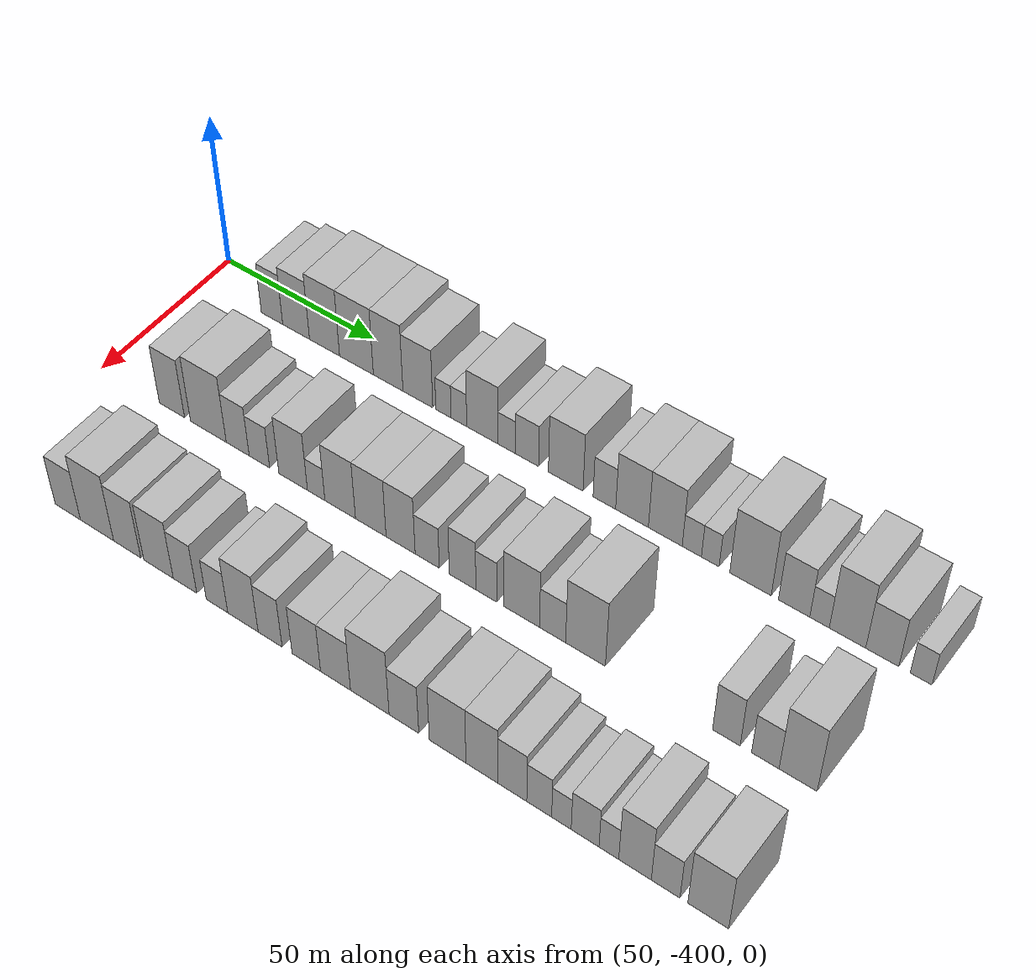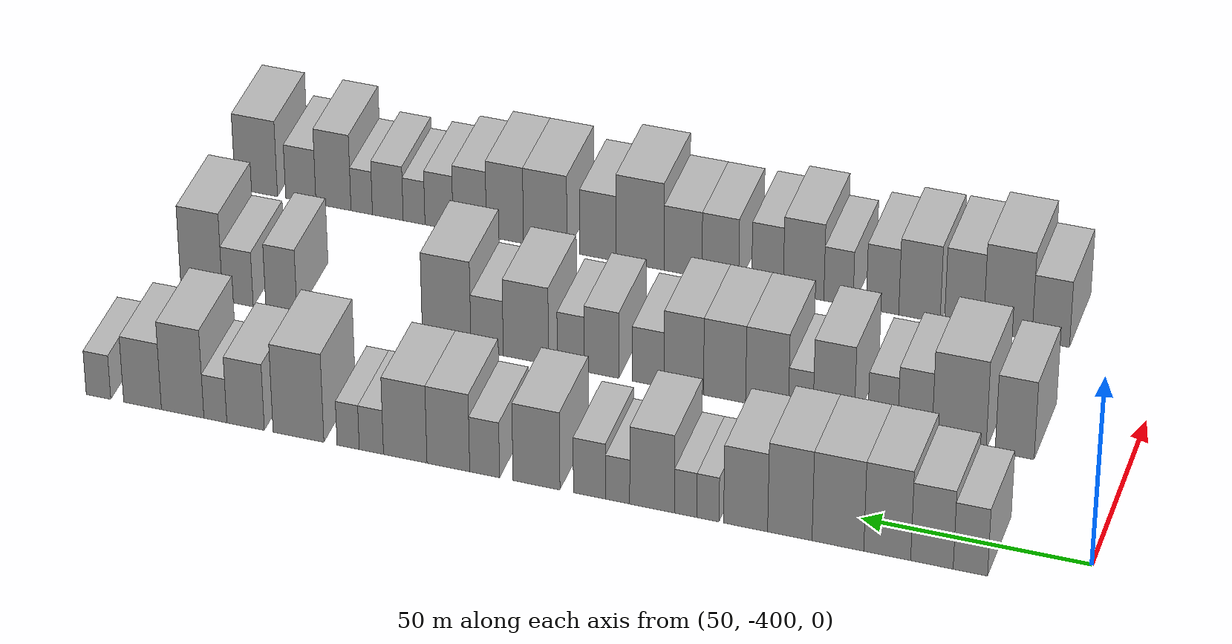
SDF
<sdf version="1.6">
 <world name="default">
  <model name="building_1">
   <static>1</static>
   <pose>50.0000 -376.3061 0 0.000000 0.000000 0.000000</pose>
   <link name="link">
    <pose>0 0 9.00 0 0 0</pose>
    <collision name="collision"><geometry><box><size>20.0000 7.3878 18.0000</size></box></geometry></collision>
    <visual name="visual">
     <cast_shadows>0</cast_shadows>
     <geometry><box><size>20.0000 7.3878 18.0000</size></box></geometry>
     <material>
      <script>
       <uri>model://HANNAS_wall/materials/scripts</uri>
       <uri>model://HANNAS_wall/materials/textures</uri>
       <name>vrc/HANNAS_wall</name>
      </script>
     </material>
    </visual>
   </link>
  </model>
  <model name="building_2">
   <static>1</static>
   <pose>50.0000 -368.0308 0 0.000000 0.000000 0.000000</pose>
   <link name="link">
    <pose>0 0 10.50 0 0 0</pose>
    <collision name="collision"><geometry><box><size>20.0000 9.1627 21.0000</size></box></geometry></collision>
    <visual name="visual">
     <cast_shadows>0</cast_shadows>
     <geometry><box><size>20.0000 9.1627 21.0000</size></box></geometry>
     <material>
      <script>
       <uri>model://HANNAS_wall/materials/scripts</uri>
       <uri>model://HANNAS_wall/materials/textures</uri>
       <name>vrc/HANNAS_wall</name>
      </script>
     </material>
    </visual>
   </link>
  </model>
  <model name="building_3">
   <static>1</static>
   <pose>50.0000 -358.3713 0 0.000000 0.000000 0.000000</pose>
   <link name="link">
    <pose>0 0 12.00 0 0 0</pose>
    <collision name="collision"><geometry><box><size>20.0000 10.1564 24.0000</size></box></geometry></collision>
    <visual name="visual">
     <cast_shadows>0</cast_shadows>
     <geometry><box><size>20.0000 10.1564 24.0000</size></box></geometry>
     <material>
      <script>
       <uri>model://HANNAS_wall/materials/scripts</uri>
       <uri>model://HANNAS_wall/materials/textures</uri>
       <name>vrc/HANNAS_wall</name>
      </script>
     </material>
    </visual>
   </link>
  </model>
  <model name="building_4">
   <static>1</static>
   <pose>50.0000 -347.6701 0 0.000000 0.000000 0.000000</pose>
   <link name="link">
    <pose>0 0 12.00 0 0 0</pose>
    <collision name="collision"><geometry><box><size>20.0000 11.2460 24.0000</size></box></geometry></collision>
    <visual name="visual">
     <cast_shadows>0</cast_shadows>
     <geometry><box><size>20.0000 11.2460 24.0000</size></box></geometry>
     <material>
      <script>
       <uri>model://HANNAS_wall/materials/scripts</uri>
       <uri>model://HANNAS_wall/materials/textures</uri>
       <name>vrc/HANNAS_wall</name>
      </script>
     </material>
    </visual>
   </link>
  </model>
  <model name="building_5">
   <static>1</static>
   <pose>50.0000 -337.1962 0 0.000000 0.000000 0.000000</pose>
   <link name="link">
    <pose>0 0 12.00 0 0 0</pose>
    <collision name="collision"><geometry><box><size>20.0000 9.7019 24.0000</size></box></geometry></collision>
    <visual name="visual">
     <cast_shadows>0</cast_shadows>
     <geometry><box><size>20.0000 9.7019 24.0000</size></box></geometry>
     <material>
      <script>
       <uri>model://HANNAS_wall/materials/scripts</uri>
       <uri>model://HANNAS_wall/materials/textures</uri>
       <name>vrc/HANNAS_wall</name>
      </script>
     </material>
    </visual>
   </link>
  </model>
  <model name="building_6">
   <static>1</static>
   <pose>50.0000 -327.5208 0 0.000000 0.000000 0.000000</pose>
   <link name="link">
    <pose>0 0 10.50 0 0 0</pose>
    <collision name="collision"><geometry><box><size>20.0000 9.6488 21.0000</size></box></geometry></collision>
    <visual name="visual">
     <cast_shadows>0</cast_shadows>
     <geometry><box><size>20.0000 9.6488 21.0000</size></box></geometry>
     <material>
      <script>
       <uri>model://HANNAS_wall/materials/scripts</uri>
       <uri>model://HANNAS_wall/materials/textures</uri>
       <name>vrc/HANNAS_wall</name>
      </script>
     </material>
    </visual>
   </link>
  </model>
  <model name="building_7">
   <static>1</static>
   <pose>50.0000 -319.2568 0 0.000000 0.000000 0.000000</pose>
   <link name="link">
    <pose>0 0 6.00 0 0 0</pose>
    <collision name="collision"><geometry><box><size>20.0000 4.8792 12.0000</size></box></geometry></collision>
    <visual name="visual">
     <cast_shadows>0</cast_shadows>
     <geometry><box><size>20.0000 4.8792 12.0000</size></box></geometry>
     <material>
      <script>
       <uri>model://HANNAS_wall/materials/scripts</uri>
       <uri>model://HANNAS_wall/materials/textures</uri>
       <name>vrc/HANNAS_wall</name>
      </script>
     </material>
    </visual>
   </link>
  </model>
  <model name="building_8">
   <static>1</static>
   <pose>50.0000 -314.3427 0 0.000000 0.000000 0.000000</pose>
   <link name="link">
    <pose>0 0 6.00 0 0 0</pose>
    <collision name="collision"><geometry><box><size>20.0000 4.9490 12.0000</size></box></geometry></collision>
    <visual name="visual">
     <cast_shadows>0</cast_shadows>
     <geometry><box><size>20.0000 4.9490 12.0000</size></box></geometry>
     <material>
      <script>
       <uri>model://HANNAS_wall/materials/scripts</uri>
       <uri>model://HANNAS_wall/materials/textures</uri>
       <name>vrc/HANNAS_wall</name>
      </script>
     </material>
    </visual>
   </link>
  </model>
  <model name="building_9">
   <static>1</static>
   <pose>50.0000 -306.9284 0 0.000000 0.000000 0.000000</pose>
   <link name="link">
    <pose>0 0 10.50 0 0 0</pose>
    <collision name="collision"><geometry><box><size>20.0000 9.8796 21.0000</size></box></geometry></collision>
    <visual name="visual">
     <cast_shadows>0</cast_shadows>
     <geometry><box><size>20.0000 9.8796 21.0000</size></box></geometry>
     <material>
      <script>
       <uri>model://HANNAS_wall/materials/scripts</uri>
       <uri>model://HANNAS_wall/materials/textures</uri>
       <name>vrc/HANNAS_wall</name>
      </script>
     </material>
    </visual>
   </link>
  </model>
  <model name="building_10">
   <static>1</static>
   <pose>50.0000 -299.2899 0 0.000000 0.000000 0.000000</pose>
   <link name="link">
    <pose>0 0 6.00 0 0 0</pose>
    <collision name="collision"><geometry><box><size>20.0000 5.3975 12.0000</size></box></geometry></collision>
    <visual name="visual">
     <cast_shadows>0</cast_shadows>
     <geometry><box><size>20.0000 5.3975 12.0000</size></box></geometry>
     <material>
      <script>
       <uri>model://HANNAS_wall/materials/scripts</uri>
       <uri>model://HANNAS_wall/materials/textures</uri>
       <name>vrc/HANNAS_wall</name>
      </script>
     </material>
    </visual>
   </link>
  </model>
  <model name="building_11">
   <static>1</static>
   <pose>50.0000 -293.0411 0 0.000000 0.000000 0.000000</pose>
   <link name="link">
    <pose>0 0 7.50 0 0 0</pose>
    <collision name="collision"><geometry><box><size>20.0000 7.1000 15.0000</size></box></geometry></collision>
    <visual name="visual">
     <cast_shadows>0</cast_shadows>
     <geometry><box><size>20.0000 7.1000 15.0000</size></box></geometry>
     <material>
      <script>
       <uri>model://HANNAS_wall/materials/scripts</uri>
       <uri>model://HANNAS_wall/materials/textures</uri>
       <name>vrc/HANNAS_wall</name>
      </script>
     </material>
    </visual>
   </link>
  </model>
  <model name="building_12">
   <static>1</static>
   <pose>50.0000 -281.2441 0 0.000000 0.000000 0.000000</pose>
   <link name="link">
    <pose>0 0 10.50 0 0 0</pose>
    <collision name="collision"><geometry><box><size>20.0000 10.4942 21.0000</size></box></geometry></collision>
    <visual name="visual">
     <cast_shadows>0</cast_shadows>
     <geometry><box><size>20.0000 10.4942 21.0000</size></box></geometry>
     <material>
      <script>
       <uri>model://HANNAS_wall/materials/scripts</uri>
       <uri>model://HANNAS_wall/materials/textures</uri>
       <name>vrc/HANNAS_wall</name>
      </script>
     </material>
    </visual>
   </link>
  </model>
  <model name="building_13">
   <static>1</static>
   <pose>50.0000 -269.6385 0 0.000000 0.000000 0.000000</pose>
   <link name="link">
    <pose>0 0 7.50 0 0 0</pose>
    <collision name="collision"><geometry><box><size>20.0000 6.7169 15.0000</size></box></geometry></collision>
    <visual name="visual">
     <cast_shadows>0</cast_shadows>
     <geometry><box><size>20.0000 6.7169 15.0000</size></box></geometry>
     <material>
      <script>
       <uri>model://HANNAS_wall/materials/scripts</uri>
       <uri>model://HANNAS_wall/materials/textures</uri>
       <name>vrc/HANNAS_wall</name>
      </script>
     </material>
    </visual>
   </link>
  </model>
  <model name="building_14">
   <static>1</static>
   <pose>50.0000 -261.4667 0 0.000000 0.000000 0.000000</pose>
   <link name="link">
    <pose>0 0 10.50 0 0 0</pose>
    <collision name="collision"><geometry><box><size>20.0000 9.6268 21.0000</size></box></geometry></collision>
    <visual name="visual">
     <cast_shadows>0</cast_shadows>
     <geometry><box><size>20.0000 9.6268 21.0000</size></box></geometry>
     <material>
      <script>
       <uri>model://HANNAS_wall/materials/scripts</uri>
       <uri>model://HANNAS_wall/materials/textures</uri>
       <name>vrc/HANNAS_wall</name>
      </script>
     </material>
    </visual>
   </link>
  </model>
  <model name="building_15">
   <static>1</static>
   <pose>50.0000 -251.7313 0 0.000000 0.000000 0.000000</pose>
   <link name="link">
    <pose>0 0 10.50 0 0 0</pose>
    <collision name="collision"><geometry><box><size>20.0000 9.8440 21.0000</size></box></geometry></collision>
    <visual name="visual">
     <cast_shadows>0</cast_shadows>
     <geometry><box><size>20.0000 9.8440 21.0000</size></box></geometry>
     <material>
      <script>
       <uri>model://HANNAS_wall/materials/scripts</uri>
       <uri>model://HANNAS_wall/materials/textures</uri>
       <name>vrc/HANNAS_wall</name>
      </script>
     </material>
    </visual>
   </link>
  </model>
  <model name="building_16">
   <static>1</static>
   <pose>50.0000 -244.0632 0 0.000000 0.000000 0.000000</pose>
   <link name="link">
    <pose>0 0 6.00 0 0 0</pose>
    <collision name="collision"><geometry><box><size>20.0000 5.4923 12.0000</size></box></geometry></collision>
    <visual name="visual">
     <cast_shadows>0</cast_shadows>
     <geometry><box><size>20.0000 5.4923 12.0000</size></box></geometry>
     <material>
      <script>
       <uri>model://HANNAS_wall/materials/scripts</uri>
       <uri>model://HANNAS_wall/materials/textures</uri>
       <name>vrc/HANNAS_wall</name>
      </script>
     </material>
    </visual>
   </link>
  </model>
  <model name="building_17">
   <static>1</static>
   <pose>50.0000 -238.7936 0 0.000000 0.000000 0.000000</pose>
   <link name="link">
    <pose>0 0 6.00 0 0 0</pose>
    <collision name="collision"><geometry><box><size>20.0000 5.0470 12.0000</size></box></geometry></collision>
    <visual name="visual">
     <cast_shadows>0</cast_shadows>
     <geometry><box><size>20.0000 5.0470 12.0000</size></box></geometry>
     <material>
      <script>
       <uri>model://HANNAS_wall/materials/scripts</uri>
       <uri>model://HANNAS_wall/materials/textures</uri>
       <name>vrc/HANNAS_wall</name>
      </script>
     </material>
    </visual>
   </link>
  </model>
  <model name="building_18">
   <static>1</static>
   <pose>50.0000 -227.4646 0 0.000000 0.000000 0.000000</pose>
   <link name="link">
    <pose>0 0 12.00 0 0 0</pose>
    <collision name="collision"><geometry><box><size>20.0000 11.6110 24.0000</size></box></geometry></collision>
    <visual name="visual">
     <cast_shadows>0</cast_shadows>
     <geometry><box><size>20.0000 11.6110 24.0000</size></box></geometry>
     <material>
      <script>
       <uri>model://HANNAS_wall/materials/scripts</uri>
       <uri>model://HANNAS_wall/materials/textures</uri>
       <name>vrc/HANNAS_wall</name>
      </script>
     </material>
    </visual>
   </link>
  </model>
  <model name="building_19">
   <static>1</static>
   <pose>50.0000 -215.3501 0 0.000000 0.000000 0.000000</pose>
   <link name="link">
    <pose>0 0 9.00 0 0 0</pose>
    <collision name="collision"><geometry><box><size>20.0000 8.6180 18.0000</size></box></geometry></collision>
    <visual name="visual">
     <cast_shadows>0</cast_shadows>
     <geometry><box><size>20.0000 8.6180 18.0000</size></box></geometry>
     <material>
      <script>
       <uri>model://HANNAS_wall/materials/scripts</uri>
       <uri>model://HANNAS_wall/materials/textures</uri>
       <name>vrc/HANNAS_wall</name>
      </script>
     </material>
    </visual>
   </link>
  </model>
  <model name="building_20">
   <static>1</static>
   <pose>50.0000 -208.3999 0 0.000000 0.000000 0.000000</pose>
   <link name="link">
    <pose>0 0 6.00 0 0 0</pose>
    <collision name="collision"><geometry><box><size>20.0000 5.2822 12.0000</size></box></geometry></collision>
    <visual name="visual">
     <cast_shadows>0</cast_shadows>
     <geometry><box><size>20.0000 5.2822 12.0000</size></box></geometry>
     <material>
      <script>
       <uri>model://HANNAS_wall/materials/scripts</uri>
       <uri>model://HANNAS_wall/materials/textures</uri>
       <name>vrc/HANNAS_wall</name>
      </script>
     </material>
    </visual>
   </link>
  </model>
  <model name="building_21">
   <static>1</static>
   <pose>50.0000 -200.8549 0 0.000000 0.000000 0.000000</pose>
   <link name="link">
    <pose>0 0 12.00 0 0 0</pose>
    <collision name="collision"><geometry><box><size>20.0000 9.8079 24.0000</size></box></geometry></collision>
    <visual name="visual">
     <cast_shadows>0</cast_shadows>
     <geometry><box><size>20.0000 9.8079 24.0000</size></box></geometry>
     <material>
      <script>
       <uri>model://HANNAS_wall/materials/scripts</uri>
       <uri>model://HANNAS_wall/materials/textures</uri>
       <name>vrc/HANNAS_wall</name>
      </script>
     </material>
    </visual>
   </link>
  </model>
  <model name="building_22">
   <static>1</static>
   <pose>50.0000 -191.5766 0 0.000000 0.000000 0.000000</pose>
   <link name="link">
    <pose>0 0 9.00 0 0 0</pose>
    <collision name="collision"><geometry><box><size>20.0000 8.7487 18.0000</size></box></geometry></collision>
    <visual name="visual">
     <cast_shadows>0</cast_shadows>
     <geometry><box><size>20.0000 8.7487 18.0000</size></box></geometry>
     <material>
      <script>
       <uri>model://HANNAS_wall/materials/scripts</uri>
       <uri>model://HANNAS_wall/materials/textures</uri>
       <name>vrc/HANNAS_wall</name>
      </script>
     </material>
    </visual>
   </link>
  </model>
  <model name="building_23">
   <static>1</static>
   <pose>50.0000 -181.3504 0 0.000000 0.000000 0.000000</pose>
   <link name="link">
    <pose>0 0 6.00 0 0 0</pose>
    <collision name="collision"><geometry><box><size>20.0000 5.7038 12.0000</size></box></geometry></collision>
    <visual name="visual">
     <cast_shadows>0</cast_shadows>
     <geometry><box><size>20.0000 5.7038 12.0000</size></box></geometry>
     <material>
      <script>
       <uri>model://HANNAS_wall/materials/scripts</uri>
       <uri>model://HANNAS_wall/materials/textures</uri>
       <name>vrc/HANNAS_wall</name>
      </script>
     </material>
    </visual>
   </link>
  </model>
  <model name="building_87">
   <static>1</static>
   <pose>90.0000 -375.7010 0 0.000000 0.000000 0.000000</pose>
   <link name="link">
    <pose>0 0 10.50 0 0 0</pose>
    <collision name="collision"><geometry><box><size>20.0000 8.5979 21.0000</size></box></geometry></collision>
    <visual name="visual">
     <cast_shadows>0</cast_shadows>
     <geometry><box><size>20.0000 8.5979 21.0000</size></box></geometry>
     <material>
      <script>
       <uri>model://HANNAS_wall/materials/scripts</uri>
       <uri>model://HANNAS_wall/materials/textures</uri>
       <name>vrc/HANNAS_wall</name>
      </script>
     </material>
    </visual>
   </link>
  </model>
  <model name="building_88">
   <static>1</static>
   <pose>90.0000 -363.4031 0 0.000000 0.000000 0.000000</pose>
   <link name="link">
    <pose>0 0 12.00 0 0 0</pose>
    <collision name="collision"><geometry><box><size>20.0000 11.9980 24.0000</size></box></geometry></collision>
    <visual name="visual">
     <cast_shadows>0</cast_shadows>
     <geometry><box><size>20.0000 11.9980 24.0000</size></box></geometry>
     <material>
      <script>
       <uri>model://HANNAS_wall/materials/scripts</uri>
       <uri>model://HANNAS_wall/materials/textures</uri>
       <name>vrc/HANNAS_wall</name>
      </script>
     </material>
    </visual>
   </link>
  </model>
  <model name="building_89">
   <static>1</static>
   <pose>90.0000 -353.6021 0 0.000000 0.000000 0.000000</pose>
   <link name="link">
    <pose>0 0 9.00 0 0 0</pose>
    <collision name="collision"><geometry><box><size>20.0000 7.6039 18.0000</size></box></geometry></collision>
    <visual name="visual">
     <cast_shadows>0</cast_shadows>
     <geometry><box><size>20.0000 7.6039 18.0000</size></box></geometry>
     <material>
      <script>
       <uri>model://HANNAS_wall/materials/scripts</uri>
       <uri>model://HANNAS_wall/materials/textures</uri>
       <name>vrc/HANNAS_wall</name>
      </script>
     </material>
    </visual>
   </link>
  </model>
  <model name="building_90">
   <static>1</static>
   <pose>90.0000 -346.4683 0 0.000000 0.000000 0.000000</pose>
   <link name="link">
    <pose>0 0 7.50 0 0 0</pose>
    <collision name="collision"><geometry><box><size>20.0000 6.6638 15.0000</size></box></geometry></collision>
    <visual name="visual">
     <cast_shadows>0</cast_shadows>
     <geometry><box><size>20.0000 6.6638 15.0000</size></box></geometry>
     <material>
      <script>
       <uri>model://HANNAS_wall/materials/scripts</uri>
       <uri>model://HANNAS_wall/materials/textures</uri>
       <name>vrc/HANNAS_wall</name>
      </script>
     </material>
    </visual>
   </link>
  </model>
  <model name="building_91">
   <static>1</static>
   <pose>90.0000 -335.5256 0 0.000000 0.000000 0.000000</pose>
   <link name="link">
    <pose>0 0 10.50 0 0 0</pose>
    <collision name="collision"><geometry><box><size>20.0000 9.2215 21.0000</size></box></geometry></collision>
    <visual name="visual">
     <cast_shadows>0</cast_shadows>
     <geometry><box><size>20.0000 9.2215 21.0000</size></box></geometry>
     <material>
      <script>
       <uri>model://HANNAS_wall/materials/scripts</uri>
       <uri>model://HANNAS_wall/materials/textures</uri>
       <name>vrc/HANNAS_wall</name>
      </script>
     </material>
    </visual>
   </link>
  </model>
  <model name="building_92">
   <static>1</static>
   <pose>90.0000 -328.1443 0 0.000000 0.000000 0.000000</pose>
   <link name="link">
    <pose>0 0 6.00 0 0 0</pose>
    <collision name="collision"><geometry><box><size>20.0000 5.5412 12.0000</size></box></geometry></collision>
    <visual name="visual">
     <cast_shadows>0</cast_shadows>
     <geometry><box><size>20.0000 5.5412 12.0000</size></box></geometry>
     <material>
      <script>
       <uri>model://HANNAS_wall/materials/scripts</uri>
       <uri>model://HANNAS_wall/materials/textures</uri>
       <name>vrc/HANNAS_wall</name>
      </script>
     </material>
    </visual>
   </link>
  </model>
  <model name="building_93">
   <static>1</static>
   <pose>90.0000 -320.5529 0 0.000000 0.000000 0.000000</pose>
   <link name="link">
    <pose>0 0 10.50 0 0 0</pose>
    <collision name="collision"><geometry><box><size>20.0000 9.6416 21.0000</size></box></geometry></collision>
    <visual name="visual">
     <cast_shadows>0</cast_shadows>
     <geometry><box><size>20.0000 9.6416 21.0000</size></box></geometry>
     <material>
      <script>
       <uri>model://HANNAS_wall/materials/scripts</uri>
       <uri>model://HANNAS_wall/materials/textures</uri>
       <name>vrc/HANNAS_wall</name>
      </script>
     </material>
    </visual>
   </link>
  </model>
  <model name="building_94">
   <static>1</static>
   <pose>90.0000 -310.9738 0 0.000000 0.000000 0.000000</pose>
   <link name="link">
    <pose>0 0 10.50 0 0 0</pose>
    <collision name="collision"><geometry><box><size>20.0000 9.5166 21.0000</size></box></geometry></collision>
    <visual name="visual">
     <cast_shadows>0</cast_shadows>
     <geometry><box><size>20.0000 9.5166 21.0000</size></box></geometry>
     <material>
      <script>
       <uri>model://HANNAS_wall/materials/scripts</uri>
       <uri>model://HANNAS_wall/materials/textures</uri>
       <name>vrc/HANNAS_wall</name>
      </script>
     </material>
    </visual>
   </link>
  </model>
  <model name="building_95">
   <static>1</static>
   <pose>90.0000 -301.7589 0 0.000000 0.000000 0.000000</pose>
   <link name="link">
    <pose>0 0 10.50 0 0 0</pose>
    <collision name="collision"><geometry><box><size>20.0000 8.9131 21.0000</size></box></geometry></collision>
    <visual name="visual">
     <cast_shadows>0</cast_shadows>
     <geometry><box><size>20.0000 8.9131 21.0000</size></box></geometry>
     <material>
      <script>
       <uri>model://HANNAS_wall/materials/scripts</uri>
       <uri>model://HANNAS_wall/materials/textures</uri>
       <name>vrc/HANNAS_wall</name>
      </script>
     </material>
    </visual>
   </link>
  </model>
  <model name="building_96">
   <static>1</static>
   <pose>90.0000 -293.6441 0 0.000000 0.000000 0.000000</pose>
   <link name="link">
    <pose>0 0 7.50 0 0 0</pose>
    <collision name="collision"><geometry><box><size>20.0000 7.3165 15.0000</size></box></geometry></collision>
    <visual name="visual">
     <cast_shadows>0</cast_shadows>
     <geometry><box><size>20.0000 7.3165 15.0000</size></box></geometry>
     <material>
      <script>
       <uri>model://HANNAS_wall/materials/scripts</uri>
       <uri>model://HANNAS_wall/materials/textures</uri>
       <name>vrc/HANNAS_wall</name>
      </script>
     </material>
    </visual>
   </link>
  </model>
  <model name="building_97">
   <static>1</static>
   <pose>90.0000 -283.0246 0 0.000000 0.000000 0.000000</pose>
   <link name="link">
    <pose>0 0 9.00 0 0 0</pose>
    <collision name="collision"><geometry><box><size>20.0000 7.9227 18.0000</size></box></geometry></collision>
    <visual name="visual">
     <cast_shadows>0</cast_shadows>
     <geometry><box><size>20.0000 7.9227 18.0000</size></box></geometry>
     <material>
      <script>
       <uri>model://HANNAS_wall/materials/scripts</uri>
       <uri>model://HANNAS_wall/materials/textures</uri>
       <name>vrc/HANNAS_wall</name>
      </script>
     </material>
    </visual>
   </link>
  </model>
  <model name="building_98">
   <static>1</static>
   <pose>90.0000 -275.9935 0 0.000000 0.000000 0.000000</pose>
   <link name="link">
    <pose>0 0 7.50 0 0 0</pose>
    <collision name="collision"><geometry><box><size>20.0000 6.1394 15.0000</size></box></geometry></collision>
    <visual name="visual">
     <cast_shadows>0</cast_shadows>
     <geometry><box><size>20.0000 6.1394 15.0000</size></box></geometry>
     <material>
      <script>
       <uri>model://HANNAS_wall/materials/scripts</uri>
       <uri>model://HANNAS_wall/materials/textures</uri>
       <name>vrc/HANNAS_wall</name>
      </script>
     </material>
    </visual>
   </link>
  </model>
  <model name="building_99">
   <static>1</static>
   <pose>90.0000 -265.7074 0 0.000000 0.000000 0.000000</pose>
   <link name="link">
    <pose>0 0 10.50 0 0 0</pose>
    <collision name="collision"><geometry><box><size>20.0000 10.4329 21.0000</size></box></geometry></collision>
    <visual name="visual">
     <cast_shadows>0</cast_shadows>
     <geometry><box><size>20.0000 10.4329 21.0000</size></box></geometry>
     <material>
      <script>
       <uri>model://HANNAS_wall/materials/scripts</uri>
       <uri>model://HANNAS_wall/materials/textures</uri>
       <name>vrc/HANNAS_wall</name>
      </script>
     </material>
    </visual>
   </link>
  </model>
  <model name="building_100">
   <static>1</static>
   <pose>90.0000 -256.7631 0 0.000000 0.000000 0.000000</pose>
   <link name="link">
    <pose>0 0 7.50 0 0 0</pose>
    <collision name="collision"><geometry><box><size>20.0000 7.4558 15.0000</size></box></geometry></collision>
    <visual name="visual">
     <cast_shadows>0</cast_shadows>
     <geometry><box><size>20.0000 7.4558 15.0000</size></box></geometry>
     <material>
      <script>
       <uri>model://HANNAS_wall/materials/scripts</uri>
       <uri>model://HANNAS_wall/materials/textures</uri>
       <name>vrc/HANNAS_wall</name>
      </script>
     </material>
    </visual>
   </link>
  </model>
  <model name="building_101">
   <static>1</static>
   <pose>90.0000 -247.4094 0 0.000000 0.000000 0.000000</pose>
   <link name="link">
    <pose>0 0 12.00 0 0 0</pose>
    <collision name="collision"><geometry><box><size>20.0000 11.2515 24.0000</size></box></geometry></collision>
    <visual name="visual">
     <cast_shadows>0</cast_shadows>
     <geometry><box><size>20.0000 11.2515 24.0000</size></box></geometry>
     <material>
      <script>
       <uri>model://HANNAS_wall/materials/scripts</uri>
       <uri>model://HANNAS_wall/materials/textures</uri>
       <name>vrc/HANNAS_wall</name>
      </script>
     </material>
    </visual>
   </link>
  </model>
  <model name="building_102">
   <static>1</static>
   <pose>90.0000 -208.7897 0 0.000000 0.000000 0.000000</pose>
   <link name="link">
    <pose>0 0 9.00 0 0 0</pose>
    <collision name="collision"><geometry><box><size>20.0000 7.3293 18.0000</size></box></geometry></collision>
    <visual name="visual">
     <cast_shadows>0</cast_shadows>
     <geometry><box><size>20.0000 7.3293 18.0000</size></box></geometry>
     <material>
      <script>
       <uri>model://HANNAS_wall/materials/scripts</uri>
       <uri>model://HANNAS_wall/materials/textures</uri>
       <name>vrc/HANNAS_wall</name>
      </script>
     </material>
    </visual>
   </link>
  </model>
  <model name="building_103">
   <static>1</static>
   <pose>90.0000 -198.5277 0 0.000000 0.000000 0.000000</pose>
   <link name="link">
    <pose>0 0 7.50 0 0 0</pose>
    <collision name="collision"><geometry><box><size>20.0000 7.1947 15.0000</size></box></geometry></collision>
    <visual name="visual">
     <cast_shadows>0</cast_shadows>
     <geometry><box><size>20.0000 7.1947 15.0000</size></box></geometry>
     <material>
      <script>
       <uri>model://HANNAS_wall/materials/scripts</uri>
       <uri>model://HANNAS_wall/materials/textures</uri>
       <name>vrc/HANNAS_wall</name>
      </script>
     </material>
    </visual>
   </link>
  </model>
  <model name="building_104">
   <static>1</static>
   <pose>90.0000 -190.0123 0 0.000000 0.000000 0.000000</pose>
   <link name="link">
    <pose>0 0 12.00 0 0 0</pose>
    <collision name="collision"><geometry><box><size>20.0000 9.8361 24.0000</size></box></geometry></collision>
    <visual name="visual">
     <cast_shadows>0</cast_shadows>
     <geometry><box><size>20.0000 9.8361 24.0000</size></box></geometry>
     <material>
      <script>
       <uri>model://HANNAS_wall/materials/scripts</uri>
       <uri>model://HANNAS_wall/materials/textures</uri>
       <name>vrc/HANNAS_wall</name>
      </script>
     </material>
    </visual>
   </link>
  </model>
  <model name="building_167">
   <static>1</static>
   <pose>130.0000 -373.7584 0 0.000000 0.000000 0.000000</pose>
   <link name="link">
    <pose>0 0 9.00 0 0 0</pose>
    <collision name="collision"><geometry><box><size>20.0000 8.4832 18.0000</size></box></geometry></collision>
    <visual name="visual">
     <cast_shadows>0</cast_shadows>
     <geometry><box><size>20.0000 8.4832 18.0000</size></box></geometry>
     <material>
      <script>
       <uri>model://HANNAS_wall/materials/scripts</uri>
       <uri>model://HANNAS_wall/materials/textures</uri>
       <name>vrc/HANNAS_wall</name>
      </script>
     </material>
    </visual>
   </link>
  </model>
  <model name="building_168">
   <static>1</static>
   <pose>130.0000 -364.0227 0 0.000000 0.000000 0.000000</pose>
   <link name="link">
    <pose>0 0 12.00 0 0 0</pose>
    <collision name="collision"><geometry><box><size>20.0000 10.9882 24.0000</size></box></geometry></collision>
    <visual name="visual">
     <cast_shadows>0</cast_shadows>
     <geometry><box><size>20.0000 10.9882 24.0000</size></box></geometry>
     <material>
      <script>
       <uri>model://HANNAS_wall/materials/scripts</uri>
       <uri>model://HANNAS_wall/materials/textures</uri>
       <name>vrc/HANNAS_wall</name>
      </script>
     </material>
    </visual>
   </link>
  </model>
  <model name="building_169">
   <static>1</static>
   <pose>130.0000 -354.1046 0 0.000000 0.000000 0.000000</pose>
   <link name="link">
    <pose>0 0 10.50 0 0 0</pose>
    <collision name="collision"><geometry><box><size>20.0000 8.8479 21.0000</size></box></geometry></collision>
    <visual name="visual">
     <cast_shadows>0</cast_shadows>
     <geometry><box><size>20.0000 8.8479 21.0000</size></box></geometry>
     <material>
      <script>
       <uri>model://HANNAS_wall/materials/scripts</uri>
       <uri>model://HANNAS_wall/materials/textures</uri>
       <name>vrc/HANNAS_wall</name>
      </script>
     </material>
    </visual>
   </link>
  </model>
  <model name="building_170">
   <static>1</static>
   <pose>130.0000 -343.9498 0 0.000000 0.000000 0.000000</pose>
   <link name="link">
    <pose>0 0 10.50 0 0 0</pose>
    <collision name="collision"><geometry><box><size>20.0000 9.4619 21.0000</size></box></geometry></collision>
    <visual name="visual">
     <cast_shadows>0</cast_shadows>
     <geometry><box><size>20.0000 9.4619 21.0000</size></box></geometry>
     <material>
      <script>
       <uri>model://HANNAS_wall/materials/scripts</uri>
       <uri>model://HANNAS_wall/materials/textures</uri>
       <name>vrc/HANNAS_wall</name>
      </script>
     </material>
    </visual>
   </link>
  </model>
  <model name="building_171">
   <static>1</static>
   <pose>130.0000 -335.4903 0 0.000000 0.000000 0.000000</pose>
   <link name="link">
    <pose>0 0 9.00 0 0 0</pose>
    <collision name="collision"><geometry><box><size>20.0000 7.4569 18.0000</size></box></geometry></collision>
    <visual name="visual">
     <cast_shadows>0</cast_shadows>
     <geometry><box><size>20.0000 7.4569 18.0000</size></box></geometry>
     <material>
      <script>
       <uri>model://HANNAS_wall/materials/scripts</uri>
       <uri>model://HANNAS_wall/materials/textures</uri>
       <name>vrc/HANNAS_wall</name>
      </script>
     </material>
    </visual>
   </link>
  </model>
  <model name="building_172">
   <static>1</static>
   <pose>130.0000 -325.3940 0 0.000000 0.000000 0.000000</pose>
   <link name="link">
    <pose>0 0 7.50 0 0 0</pose>
    <collision name="collision"><geometry><box><size>20.0000 6.7357 15.0000</size></box></geometry></collision>
    <visual name="visual">
     <cast_shadows>0</cast_shadows>
     <geometry><box><size>20.0000 6.7357 15.0000</size></box></geometry>
     <material>
      <script>
       <uri>model://HANNAS_wall/materials/scripts</uri>
       <uri>model://HANNAS_wall/materials/textures</uri>
       <name>vrc/HANNAS_wall</name>
      </script>
     </material>
    </visual>
   </link>
  </model>
  <model name="building_173">
   <static>1</static>
   <pose>130.0000 -317.3350 0 0.000000 0.000000 0.000000</pose>
   <link name="link">
    <pose>0 0 10.50 0 0 0</pose>
    <collision name="collision"><geometry><box><size>20.0000 9.3824 21.0000</size></box></geometry></collision>
    <visual name="visual">
     <cast_shadows>0</cast_shadows>
     <geometry><box><size>20.0000 9.3824 21.0000</size></box></geometry>
     <material>
      <script>
       <uri>model://HANNAS_wall/materials/scripts</uri>
       <uri>model://HANNAS_wall/materials/textures</uri>
       <name>vrc/HANNAS_wall</name>
      </script>
     </material>
    </visual>
   </link>
  </model>
  <model name="building_174">
   <static>1</static>
   <pose>130.0000 -308.9927 0 0.000000 0.000000 0.000000</pose>
   <link name="link">
    <pose>0 0 9.00 0 0 0</pose>
    <collision name="collision"><geometry><box><size>20.0000 7.3023 18.0000</size></box></geometry></collision>
    <visual name="visual">
     <cast_shadows>0</cast_shadows>
     <geometry><box><size>20.0000 7.3023 18.0000</size></box></geometry>
     <material>
      <script>
       <uri>model://HANNAS_wall/materials/scripts</uri>
       <uri>model://HANNAS_wall/materials/textures</uri>
       <name>vrc/HANNAS_wall</name>
      </script>
     </material>
    </visual>
   </link>
  </model>
  <model name="building_175">
   <static>1</static>
   <pose>130.0000 -298.0739 0 0.000000 0.000000 0.000000</pose>
   <link name="link">
    <pose>0 0 9.00 0 0 0</pose>
    <collision name="collision"><geometry><box><size>20.0000 8.5353 18.0000</size></box></geometry></collision>
    <visual name="visual">
     <cast_shadows>0</cast_shadows>
     <geometry><box><size>20.0000 8.5353 18.0000</size></box></geometry>
     <material>
      <script>
       <uri>model://HANNAS_wall/materials/scripts</uri>
       <uri>model://HANNAS_wall/materials/textures</uri>
       <name>vrc/HANNAS_wall</name>
      </script>
     </material>
    </visual>
   </link>
  </model>
  <model name="building_176">
   <static>1</static>
   <pose>130.0000 -289.3762 0 0.000000 0.000000 0.000000</pose>
   <link name="link">
    <pose>0 0 9.00 0 0 0</pose>
    <collision name="collision"><geometry><box><size>20.0000 8.8600 18.0000</size></box></geometry></collision>
    <visual name="visual">
     <cast_shadows>0</cast_shadows>
     <geometry><box><size>20.0000 8.8600 18.0000</size></box></geometry>
     <material>
      <script>
       <uri>model://HANNAS_wall/materials/scripts</uri>
       <uri>model://HANNAS_wall/materials/textures</uri>
       <name>vrc/HANNAS_wall</name>
      </script>
     </material>
    </visual>
   </link>
  </model>
  <model name="building_177">
   <static>1</static>
   <pose>130.0000 -279.3270 0 0.000000 0.000000 0.000000</pose>
   <link name="link">
    <pose>0 0 12.00 0 0 0</pose>
    <collision name="collision"><geometry><box><size>20.0000 11.2385 24.0000</size></box></geometry></collision>
    <visual name="visual">
     <cast_shadows>0</cast_shadows>
     <geometry><box><size>20.0000 11.2385 24.0000</size></box></geometry>
     <material>
      <script>
       <uri>model://HANNAS_wall/materials/scripts</uri>
       <uri>model://HANNAS_wall/materials/textures</uri>
       <name>vrc/HANNAS_wall</name>
      </script>
     </material>
    </visual>
   </link>
  </model>
  <model name="building_178">
   <static>1</static>
   <pose>130.0000 -269.4600 0 0.000000 0.000000 0.000000</pose>
   <link name="link">
    <pose>0 0 9.00 0 0 0</pose>
    <collision name="collision"><geometry><box><size>20.0000 8.4954 18.0000</size></box></geometry></collision>
    <visual name="visual">
     <cast_shadows>0</cast_shadows>
     <geometry><box><size>20.0000 8.4954 18.0000</size></box></geometry>
     <material>
      <script>
       <uri>model://HANNAS_wall/materials/scripts</uri>
       <uri>model://HANNAS_wall/materials/textures</uri>
       <name>vrc/HANNAS_wall</name>
      </script>
     </material>
    </visual>
   </link>
  </model>
  <model name="building_179">
   <static>1</static>
   <pose>130.0000 -257.0706 0 0.000000 0.000000 0.000000</pose>
   <link name="link">
    <pose>0 0 10.50 0 0 0</pose>
    <collision name="collision"><geometry><box><size>20.0000 10.2835 21.0000</size></box></geometry></collision>
    <visual name="visual">
     <cast_shadows>0</cast_shadows>
     <geometry><box><size>20.0000 10.2835 21.0000</size></box></geometry>
     <material>
      <script>
       <uri>model://HANNAS_wall/materials/scripts</uri>
       <uri>model://HANNAS_wall/materials/textures</uri>
       <name>vrc/HANNAS_wall</name>
      </script>
     </material>
    </visual>
   </link>
  </model>
  <model name="building_180">
   <static>1</static>
   <pose>130.0000 -247.5439 0 0.000000 0.000000 0.000000</pose>
   <link name="link">
    <pose>0 0 10.50 0 0 0</pose>
    <collision name="collision"><geometry><box><size>20.0000 8.7699 21.0000</size></box></geometry></collision>
    <visual name="visual">
     <cast_shadows>0</cast_shadows>
     <geometry><box><size>20.0000 8.7699 21.0000</size></box></geometry>
     <material>
      <script>
       <uri>model://HANNAS_wall/materials/scripts</uri>
       <uri>model://HANNAS_wall/materials/textures</uri>
       <name>vrc/HANNAS_wall</name>
      </script>
     </material>
    </visual>
   </link>
  </model>
  <model name="building_181">
   <static>1</static>
   <pose>130.0000 -239.1841 0 0.000000 0.000000 0.000000</pose>
   <link name="link">
    <pose>0 0 9.00 0 0 0</pose>
    <collision name="collision"><geometry><box><size>20.0000 7.9498 18.0000</size></box></geometry></collision>
    <visual name="visual">
     <cast_shadows>0</cast_shadows>
     <geometry><box><size>20.0000 7.9498 18.0000</size></box></geometry>
     <material>
      <script>
       <uri>model://HANNAS_wall/materials/scripts</uri>
       <uri>model://HANNAS_wall/materials/textures</uri>
       <name>vrc/HANNAS_wall</name>
      </script>
     </material>
    </visual>
   </link>
  </model>
  <model name="building_182">
   <static>1</static>
   <pose>130.0000 -231.8553 0 0.000000 0.000000 0.000000</pose>
   <link name="link">
    <pose>0 0 7.50 0 0 0</pose>
    <collision name="collision"><geometry><box><size>20.0000 6.7076 15.0000</size></box></geometry></collision>
    <visual name="visual">
     <cast_shadows>0</cast_shadows>
     <geometry><box><size>20.0000 6.7076 15.0000</size></box></geometry>
     <material>
      <script>
       <uri>model://HANNAS_wall/materials/scripts</uri>
       <uri>model://HANNAS_wall/materials/textures</uri>
       <name>vrc/HANNAS_wall</name>
      </script>
     </material>
    </visual>
   </link>
  </model>
  <model name="building_183">
   <static>1</static>
   <pose>130.0000 -225.8961 0 0.000000 0.000000 0.000000</pose>
   <link name="link">
    <pose>0 0 6.00 0 0 0</pose>
    <collision name="collision"><geometry><box><size>20.0000 5.2108 12.0000</size></box></geometry></collision>
    <visual name="visual">
     <cast_shadows>0</cast_shadows>
     <geometry><box><size>20.0000 5.2108 12.0000</size></box></geometry>
     <material>
      <script>
       <uri>model://HANNAS_wall/materials/scripts</uri>
       <uri>model://HANNAS_wall/materials/textures</uri>
       <name>vrc/HANNAS_wall</name>
      </script>
     </material>
    </visual>
   </link>
  </model>
  <model name="building_184">
   <static>1</static>
   <pose>130.0000 -219.6050 0 0.000000 0.000000 0.000000</pose>
   <link name="link">
    <pose>0 0 7.50 0 0 0</pose>
    <collision name="collision"><geometry><box><size>20.0000 7.3713 15.0000</size></box></geometry></collision>
    <visual name="visual">
     <cast_shadows>0</cast_shadows>
     <geometry><box><size>20.0000 7.3713 15.0000</size></box></geometry>
     <material>
      <script>
       <uri>model://HANNAS_wall/materials/scripts</uri>
       <uri>model://HANNAS_wall/materials/textures</uri>
       <name>vrc/HANNAS_wall</name>
      </script>
     </material>
    </visual>
   </link>
  </model>
  <model name="building_185">
   <static>1</static>
   <pose>130.0000 -213.3460 0 0.000000 0.000000 0.000000</pose>
   <link name="link">
    <pose>0 0 6.00 0 0 0</pose>
    <collision name="collision"><geometry><box><size>20.0000 5.1467 12.0000</size></box></geometry></collision>
    <visual name="visual">
     <cast_shadows>0</cast_shadows>
     <geometry><box><size>20.0000 5.1467 12.0000</size></box></geometry>
     <material>
      <script>
       <uri>model://HANNAS_wall/materials/scripts</uri>
       <uri>model://HANNAS_wall/materials/textures</uri>
       <name>vrc/HANNAS_wall</name>
      </script>
     </material>
    </visual>
   </link>
  </model>
  <model name="building_186">
   <static>1</static>
   <pose>130.0000 -206.5487 0 0.000000 0.000000 0.000000</pose>
   <link name="link">
    <pose>0 0 10.50 0 0 0</pose>
    <collision name="collision"><geometry><box><size>20.0000 8.4479 21.0000</size></box></geometry></collision>
    <visual name="visual">
     <cast_shadows>0</cast_shadows>
     <geometry><box><size>20.0000 8.4479 21.0000</size></box></geometry>
     <material>
      <script>
       <uri>model://HANNAS_wall/materials/scripts</uri>
       <uri>model://HANNAS_wall/materials/textures</uri>
       <name>vrc/HANNAS_wall</name>
      </script>
     </material>
    </visual>
   </link>
  </model>
  <model name="building_187">
   <static>1</static>
   <pose>130.0000 -198.6700 0 0.000000 0.000000 0.000000</pose>
   <link name="link">
    <pose>0 0 7.50 0 0 0</pose>
    <collision name="collision"><geometry><box><size>20.0000 7.3094 15.0000</size></box></geometry></collision>
    <visual name="visual">
     <cast_shadows>0</cast_shadows>
     <geometry><box><size>20.0000 7.3094 15.0000</size></box></geometry>
     <material>
      <script>
       <uri>model://HANNAS_wall/materials/scripts</uri>
       <uri>model://HANNAS_wall/materials/textures</uri>
       <name>vrc/HANNAS_wall</name>
      </script>
     </material>
    </visual>
   </link>
  </model>
  <model name="building_188">
   <static>1</static>
   <pose>130.0000 -187.8933 0 0.000000 0.000000 0.000000</pose>
   <link name="link">
    <pose>0 0 10.50 0 0 0</pose>
    <collision name="collision"><geometry><box><size>20.0000 10.2439 21.0000</size></box></geometry></collision>
    <visual name="visual">
     <cast_shadows>0</cast_shadows>
     <geometry><box><size>20.0000 10.2439 21.0000</size></box></geometry>
     <material>
      <script>
       <uri>model://HANNAS_wall/materials/scripts</uri>
       <uri>model://HANNAS_wall/materials/textures</uri>
       <name>vrc/HANNAS_wall</name>
      </script>
     </material>
    </visual>
   </link>
  </model>
 </world>
</sdf>
